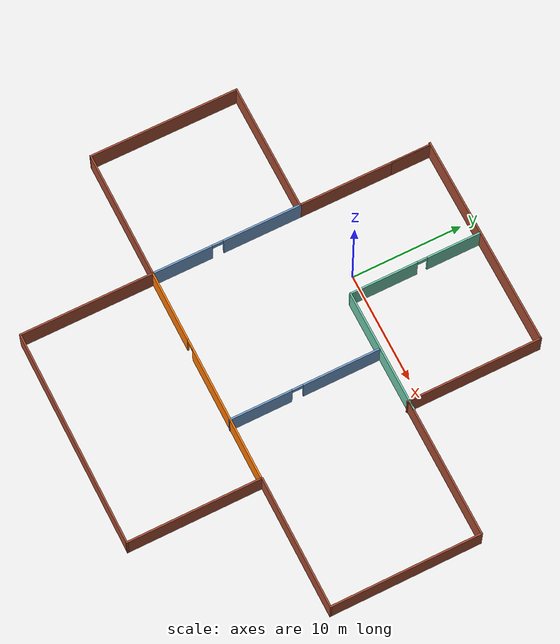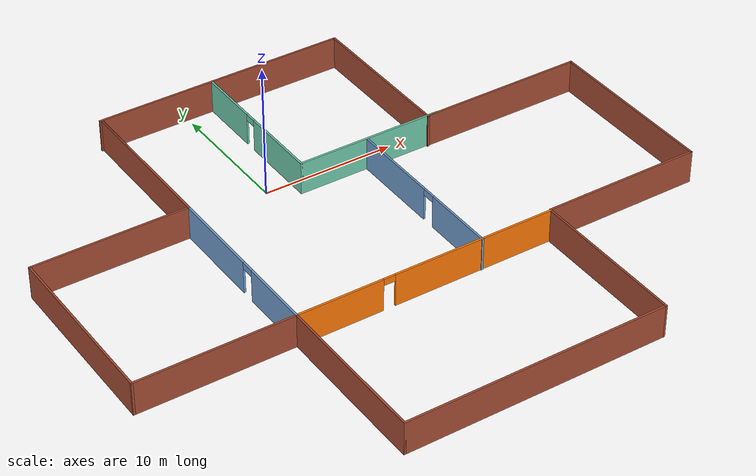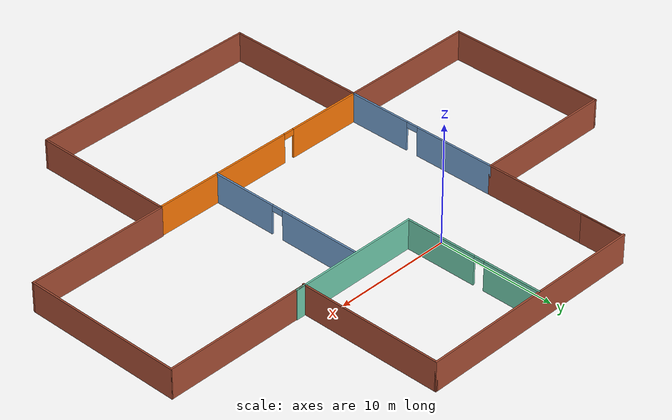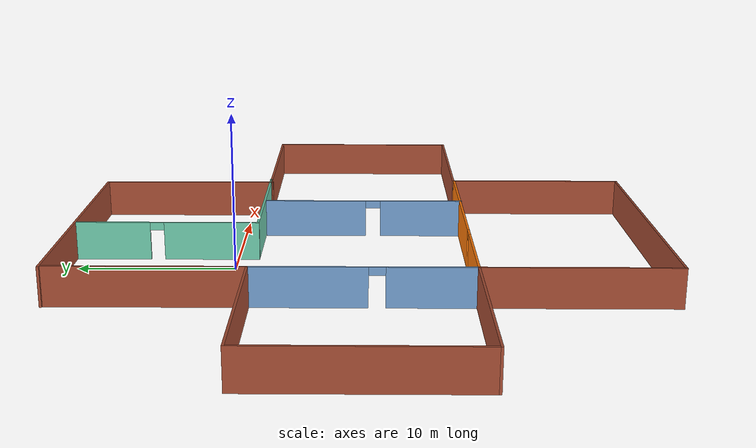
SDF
<?xml version='1.0'?>
<sdf version='1.6'>
  <model name='building2'>
    <pose frame=''>3.23134 -8.00278 0 0 -0 0</pose>
    <link name='Wall_0'>
      <collision name='Wall_0_Collision'>
        <geometry>
          <box>
            <size>19.344 0.15 2.5</size>
          </box>
        </geometry>
        <pose frame=''>0 0 1.25 0 -0 0</pose>
      </collision>
      <visual name='Wall_0_Visual'>
        <pose frame=''>0 0 1.25 0 -0 0</pose>
        <geometry>
          <box>
            <size>19.344 0.15 2.5</size>
          </box>
        </geometry>
        <material>
          <script>
            <uri>file://media/materials/scripts/gazebo.material</uri>
            <name>Gazebo/Bricks</name>
          </script>
          <ambient>1 1 1 1</ambient>
        </material>
        <meta>
          <layer>0</layer>
        </meta>
      </visual>
      <pose frame=''>-0.473335 18.6068 0 0 -0 0</pose>
    </link>
    <link name='Wall_1'>
      <collision name='Wall_1_Collision'>
        <geometry>
          <box>
            <size>12.164 0.15 2.5</size>
          </box>
        </geometry>
        <pose frame=''>0 0 1.25 0 -0 0</pose>
      </collision>
      <visual name='Wall_1_Visual'>
        <pose frame=''>0 0 1.25 0 -0 0</pose>
        <geometry>
          <box>
            <size>12.164 0.15 2.5</size>
          </box>
        </geometry>
        <material>
          <script>
            <uri>file://media/materials/scripts/gazebo.material</uri>
            <name>Gazebo/Bricks</name>
          </script>
          <ambient>1 1 1 1</ambient>
        </material>
        <meta>
          <layer>0</layer>
        </meta>
      </visual>
      <pose frame=''>9.12347 12.5998 0 0 -0 -1.57083</pose>
    </link>
    <link name='Wall_10'>
      <collision name='Wall_10_Collision'>
        <geometry>
          <box>
            <size>11.75 0.15 2.5</size>
          </box>
        </geometry>
        <pose frame=''>0 0 1.25 0 -0 0</pose>
      </collision>
      <visual name='Wall_10_Visual'>
        <pose frame=''>0 0 1.25 0 -0 0</pose>
        <geometry>
          <box>
            <size>11.75 0.15 2.5</size>
          </box>
        </geometry>
        <material>
          <script>
            <uri>file://media/materials/scripts/gazebo.material</uri>
            <name>Gazebo/Bricks</name>
          </script>
          <ambient>1 1 1 1</ambient>
        </material>
        <meta>
          <layer>0</layer>
        </meta>
      </visual>
      <pose frame=''>-15.7507 -6.75678 0 0 -0 3.14159</pose>
    </link>
    <link name='Wall_11'>
      <collision name='Wall_11_Collision'>
        <geometry>
          <box>
            <size>13.5 0.15 2.5</size>
          </box>
        </geometry>
        <pose frame=''>0 0 1.25 0 -0 0</pose>
      </collision>
      <visual name='Wall_11_Visual'>
        <pose frame=''>0 0 1.25 0 -0 0</pose>
        <geometry>
          <box>
            <size>13.5 0.15 2.5</size>
          </box>
        </geometry>
        <material>
          <script>
            <uri>file://media/materials/scripts/gazebo.material</uri>
            <name>Gazebo/Bricks</name>
          </script>
          <ambient>1 1 1 1</ambient>
        </material>
        <meta>
          <layer>0</layer>
        </meta>
      </visual>
      <pose frame=''>-21.5507 -0.081781 0 0 -0 1.5708</pose>
    </link>
    <link name='Wall_12'>
      <collision name='Wall_12_Collision'>
        <geometry>
          <box>
            <size>11.75 0.15 2.5</size>
          </box>
        </geometry>
        <pose frame=''>0 0 1.25 0 -0 0</pose>
      </collision>
      <visual name='Wall_12_Visual'>
        <pose frame=''>0 0 1.25 0 -0 0</pose>
        <geometry>
          <box>
            <size>11.75 0.15 2.5</size>
          </box>
        </geometry>
        <material>
          <script>
            <uri>file://media/materials/scripts/gazebo.material</uri>
            <name>Gazebo/Bricks</name>
          </script>
          <ambient>1 1 1 1</ambient>
        </material>
        <meta>
          <layer>0</layer>
        </meta>
      </visual>
      <pose frame=''>-15.7507 6.59322 0 0 -0 0</pose>
    </link>
    <link name='Wall_13'>
      <collision name='Wall_13_Collision'>
        <geometry>
          <box>
            <size>12 0.15 2.5</size>
          </box>
        </geometry>
        <pose frame=''>0 0 1.25 0 -0 0</pose>
      </collision>
      <visual name='Wall_13_Visual'>
        <pose frame=''>0 0 1.25 0 -0 0</pose>
        <geometry>
          <box>
            <size>12 0.15 2.5</size>
          </box>
        </geometry>
        <material>
          <script>
            <uri>file://media/materials/scripts/gazebo.material</uri>
            <name>Gazebo/Bricks</name>
          </script>
          <ambient>1 1 1 1</ambient>
        </material>
        <meta>
          <layer>0</layer>
        </meta>
      </visual>
      <pose frame=''>-9.95069 12.5182 0 0 -0 1.5708</pose>
    </link>
    <link name='Wall_14'>
      <collision name='Wall_14_Collision'>
        <geometry>
          <box>
            <size>3.55 0.15 2.5</size>
          </box>
        </geometry>
        <pose frame=''>0 0 1.25 0 -0 0</pose>
      </collision>
      <visual name='Wall_14_Visual'>
        <pose frame=''>0 0 1.25 0 -0 0</pose>
        <geometry>
          <box>
            <size>3.55 0.15 2.5</size>
          </box>
        </geometry>
        <material>
          <script>
            <uri>file://media/materials/scripts/gazebo.material</uri>
            <name>Gazebo/Bricks</name>
          </script>
          <ambient>1 1 1 1</ambient>
        </material>
        <meta>
          <layer>0</layer>
        </meta>
      </visual>
      <pose frame=''>-9.95069 16.7432 0 0 -0 -1.5708</pose>
    </link>
    <link name='Wall_18'>
      <collision name='Wall_18_Collision'>
        <geometry>
          <box>
            <size>12 0.15 2.5</size>
          </box>
        </geometry>
        <pose frame=''>0 0 1.25 0 -0 0</pose>
      </collision>
      <visual name='Wall_18_Visual'>
        <pose frame=''>0 0 1.25 0 -0 0</pose>
        <geometry>
          <box>
            <size>12 0.15 2.5</size>
          </box>
        </geometry>
        <material>
          <script>
            <uri>file://media/materials/scripts/gazebo.material</uri>
            <name>Gazebo/Bricks</name>
          </script>
          <ambient>1 1 1 1</ambient>
        </material>
        <meta>
          <layer>0</layer>
        </meta>
      </visual>
      <pose frame=''>-9.95069 -12.6818 0 0 -0 -1.5708</pose>
    </link>
    <link name='Wall_2'>
      <collision name='Wall_2_Collision'>
        <geometry>
          <box>
            <size>12.5773 0.15 2.5</size>
          </box>
        </geometry>
        <pose frame=''>0 0 1.25 0 -0 0</pose>
      </collision>
      <visual name='Wall_2_Visual'>
        <pose frame=''>0 0 1.25 0 -0 0</pose>
        <geometry>
          <box>
            <size>12.5773 0.15 2.5</size>
          </box>
        </geometry>
        <material>
          <script>
            <uri>file://media/materials/scripts/gazebo.material</uri>
            <name>Gazebo/Bricks</name>
          </script>
          <ambient>1 1 1 1</ambient>
        </material>
        <meta>
          <layer>0</layer>
        </meta>
      </visual>
      <pose frame=''>15.3369 6.66751 0 0 -0 -0.001151</pose>
    </link>
    <link name='Wall_20'>
      <collision name='Wall_20_Collision'>
        <geometry>
          <box>
            <size>19.75 0.15 2.5</size>
          </box>
        </geometry>
        <pose frame=''>0 0 1.25 0 -0 0</pose>
      </collision>
      <visual name='Wall_20_Visual'>
        <pose frame=''>0 0 1.25 0 -0 0</pose>
        <geometry>
          <box>
            <size>19.75 0.15 2.5</size>
          </box>
        </geometry>
        <material>
          <script>
            <uri>file://media/materials/scripts/gazebo.material</uri>
            <name>Gazebo/Bricks</name>
          </script>
          <ambient>1 1 1 1</ambient>
        </material>
        <meta>
          <layer>0</layer>
        </meta>
      </visual>
      <pose frame=''>-0.150688 -18.6068 0 0 -0 0</pose>
    </link>
    <link name='Wall_22'>
      <pose frame=''>-9.95069 -0.081781 0 0 -0 -1.5708</pose>
      <visual name='Wall_22_Visual_0'>
        <pose frame=''>-3.21252 0 1.25 0 -0 0</pose>
        <geometry>
          <box>
            <size>7.07496 0.15 2.5</size>
          </box>
        </geometry>
        <material>
          <script>
            <uri>file://media/materials/scripts/gazebo.material</uri>
            <name>Gazebo/Grey</name>
          </script>
          <ambient>0.447059 0.623529 0.811765 1</ambient>
        </material>
        <meta>
          <layer>0</layer>
        </meta>
      </visual>
      <collision name='Wall_22_Collision_0'>
        <geometry>
          <box>
            <size>7.07496 0.15 2.5</size>
          </box>
        </geometry>
        <pose frame=''>-3.21252 0 1.25 0 -0 0</pose>
      </collision>
      <visual name='Wall_22_Visual_1'>
        <pose frame=''>4.03748 0 1.25 0 -0 0</pose>
        <geometry>
          <box>
            <size>5.42504 0.15 2.5</size>
          </box>
        </geometry>
        <material>
          <script>
            <uri>file://media/materials/scripts/gazebo.material</uri>
            <name>Gazebo/Grey</name>
          </script>
          <ambient>0.447059 0.623529 0.811765 1</ambient>
        </material>
        <meta>
          <layer>0</layer>
        </meta>
      </visual>
      <collision name='Wall_22_Collision_1'>
        <geometry>
          <box>
            <size>5.42504 0.15 2.5</size>
          </box>
        </geometry>
        <pose frame=''>4.03748 0 1.25 0 -0 0</pose>
      </collision>
      <visual name='Wall_22_Visual_2'>
        <pose frame=''>0.824956 0 2.25 0 -0 0</pose>
        <geometry>
          <box>
            <size>1 0.15 0.5</size>
          </box>
        </geometry>
        <material>
          <script>
            <uri>file://media/materials/scripts/gazebo.material</uri>
            <name>Gazebo/Grey</name>
          </script>
          <ambient>0.447059 0.623529 0.811765 1</ambient>
        </material>
        <meta>
          <layer>0</layer>
        </meta>
      </visual>
      <collision name='Wall_22_Collision_2'>
        <geometry>
          <box>
            <size>1 0.15 0.5</size>
          </box>
        </geometry>
        <pose frame=''>0.824956 0 2.25 0 -0 0</pose>
      </collision>
    </link>
    <link name='Wall_23'>
      <pose frame=''>-0.150688 -6.75678 0 0 -0 0</pose>
      <visual name='Wall_23_Visual_0'>
        <pose frame=''>-6.62822 0 1.25 0 -0 0</pose>
        <geometry>
          <box>
            <size>6.49356 0.15 2.5</size>
          </box>
        </geometry>
        <material>
          <script>
            <uri>file://media/materials/scripts/gazebo.material</uri>
            <name>Gazebo/Grey</name>
          </script>
          <ambient>0.996078 0.47451 0.0196078 1</ambient>
        </material>
        <meta>
          <layer>0</layer>
        </meta>
      </visual>
      <collision name='Wall_23_Collision_0'>
        <geometry>
          <box>
            <size>6.49356 0.15 2.5</size>
          </box>
        </geometry>
        <pose frame=''>-6.62822 0 1.25 0 -0 0</pose>
      </collision>
      <visual name='Wall_23_Visual_1'>
        <pose frame=''>3.69678 0 1.25 0 -0 0</pose>
        <geometry>
          <box>
            <size>12.3564 0.15 2.5</size>
          </box>
        </geometry>
        <material>
          <script>
            <uri>file://media/materials/scripts/gazebo.material</uri>
            <name>Gazebo/Grey</name>
          </script>
          <ambient>0.996078 0.47451 0.0196078 1</ambient>
        </material>
        <meta>
          <layer>0</layer>
        </meta>
      </visual>
      <collision name='Wall_23_Collision_1'>
        <geometry>
          <box>
            <size>12.3564 0.15 2.5</size>
          </box>
        </geometry>
        <pose frame=''>3.69678 0 1.25 0 -0 0</pose>
      </collision>
      <visual name='Wall_23_Visual_2'>
        <pose frame=''>-2.93144 0 2.25 0 -0 0</pose>
        <geometry>
          <box>
            <size>0.9 0.15 0.5</size>
          </box>
        </geometry>
        <material>
          <script>
            <uri>file://media/materials/scripts/gazebo.material</uri>
            <name>Gazebo/Grey</name>
          </script>
          <ambient>0.996078 0.47451 0.0196078 1</ambient>
        </material>
        <meta>
          <layer>0</layer>
        </meta>
      </visual>
      <collision name='Wall_23_Collision_2'>
        <geometry>
          <box>
            <size>0.9 0.15 0.5</size>
          </box>
        </geometry>
        <pose frame=''>-2.93144 0 2.25 0 -0 0</pose>
      </collision>
    </link>
    <link name='Wall_28'>
      <pose frame=''>-1.18543 12.6467 0 0 -0 -1.5708</pose>
      <visual name='Wall_28_Visual_0'>
        <pose frame=''>-3.53301 0 1.25 0 -0 0</pose>
        <geometry>
          <box>
            <size>4.93397 0.15 2.5</size>
          </box>
        </geometry>
        <material>
          <script>
            <uri>file://media/materials/scripts/gazebo.material</uri>
            <name>Gazebo/Grey</name>
          </script>
          <ambient>0.435294 0.796078 0.67451 1</ambient>
        </material>
        <meta>
          <layer>0</layer>
        </meta>
      </visual>
      <collision name='Wall_28_Collision_0'>
        <geometry>
          <box>
            <size>4.93397 0.15 2.5</size>
          </box>
        </geometry>
        <pose frame=''>-3.53301 0 1.25 0 -0 0</pose>
      </collision>
      <visual name='Wall_28_Visual_1'>
        <pose frame=''>2.91699 0 1.25 0 -0 0</pose>
        <geometry>
          <box>
            <size>6.16603 0.15 2.5</size>
          </box>
        </geometry>
        <material>
          <script>
            <uri>file://media/materials/scripts/gazebo.material</uri>
            <name>Gazebo/Grey</name>
          </script>
          <ambient>0.435294 0.796078 0.67451 1</ambient>
        </material>
        <meta>
          <layer>0</layer>
        </meta>
      </visual>
      <collision name='Wall_28_Collision_1'>
        <geometry>
          <box>
            <size>6.16603 0.15 2.5</size>
          </box>
        </geometry>
        <pose frame=''>2.91699 0 1.25 0 -0 0</pose>
      </collision>
      <visual name='Wall_28_Visual_2'>
        <pose frame=''>-0.616027 0 2.25 0 -0 0</pose>
        <geometry>
          <box>
            <size>0.9 0.15 0.5</size>
          </box>
        </geometry>
        <material>
          <script>
            <uri>file://media/materials/scripts/gazebo.material</uri>
            <name>Gazebo/Grey</name>
          </script>
          <ambient>0.435294 0.796078 0.67451 1</ambient>
        </material>
        <meta>
          <layer>0</layer>
        </meta>
      </visual>
      <collision name='Wall_28_Collision_2'>
        <geometry>
          <box>
            <size>0.9 0.15 0.5</size>
          </box>
        </geometry>
        <pose frame=''>-0.616027 0 2.25 0 -0 0</pose>
      </collision>
    </link>
    <link name='Wall_29'>
      <collision name='Wall_29_Collision'>
        <geometry>
          <box>
            <size>11.25 0.15 2.5</size>
          </box>
        </geometry>
        <pose frame=''>0 0 1.25 0 -0 0</pose>
      </collision>
      <visual name='Wall_29_Visual'>
        <pose frame=''>0 0 1.25 0 -0 0</pose>
        <geometry>
          <box>
            <size>11.25 0.15 2.5</size>
          </box>
        </geometry>
        <material>
          <script>
            <uri>file://media/materials/scripts/gazebo.material</uri>
            <name>Gazebo/Grey</name>
          </script>
          <ambient>0.435294 0.796078 0.67451 1</ambient>
        </material>
        <meta>
          <layer>0</layer>
        </meta>
      </visual>
      <pose frame=''>4.36457 6.7217 0 0 -0 0</pose>
    </link>
    <link name='Wall_3'>
      <collision name='Wall_3_Collision'>
        <geometry>
          <box>
            <size>13.5 0.15 2.5</size>
          </box>
        </geometry>
        <pose frame=''>0 0 1.25 0 -0 0</pose>
      </collision>
      <visual name='Wall_3_Visual'>
        <pose frame=''>0 0 1.25 0 -0 0</pose>
        <geometry>
          <box>
            <size>13.5 0.15 2.5</size>
          </box>
        </geometry>
        <material>
          <script>
            <uri>file://media/materials/scripts/gazebo.material</uri>
            <name>Gazebo/Bricks</name>
          </script>
          <ambient>1 1 1 1</ambient>
        </material>
        <meta>
          <layer>0</layer>
        </meta>
      </visual>
      <pose frame=''>21.5506 -0.014642 0 0 -0 -1.5708</pose>
    </link>
    <link name='Wall_31'>
      <pose frame=''>4.11022 -0.125876 0 0 -0 -1.5708</pose>
      <visual name='Wall_31_Visual_0'>
        <pose frame=''>-3.30613 0 1.25 0 -0 0</pose>
        <geometry>
          <box>
            <size>6.88774 0.15 2.5</size>
          </box>
        </geometry>
        <material>
          <script>
            <uri>file://media/materials/scripts/gazebo.material</uri>
            <name>Gazebo/Grey</name>
          </script>
          <ambient>0.447059 0.623529 0.811765 1</ambient>
        </material>
        <meta>
          <layer>0</layer>
        </meta>
      </visual>
      <collision name='Wall_31_Collision_0'>
        <geometry>
          <box>
            <size>6.88774 0.15 2.5</size>
          </box>
        </geometry>
        <pose frame=''>-3.30613 0 1.25 0 -0 0</pose>
      </collision>
      <visual name='Wall_31_Visual_1'>
        <pose frame=''>3.94387 0 1.25 0 -0 0</pose>
        <geometry>
          <box>
            <size>5.61226 0.15 2.5</size>
          </box>
        </geometry>
        <material>
          <script>
            <uri>file://media/materials/scripts/gazebo.material</uri>
            <name>Gazebo/Grey</name>
          </script>
          <ambient>0.447059 0.623529 0.811765 1</ambient>
        </material>
        <meta>
          <layer>0</layer>
        </meta>
      </visual>
      <collision name='Wall_31_Collision_1'>
        <geometry>
          <box>
            <size>5.61226 0.15 2.5</size>
          </box>
        </geometry>
        <pose frame=''>3.94387 0 1.25 0 -0 0</pose>
      </collision>
      <visual name='Wall_31_Visual_2'>
        <pose frame=''>0.637735 0 2.25 0 -0 0</pose>
        <geometry>
          <box>
            <size>1 0.15 0.5</size>
          </box>
        </geometry>
        <material>
          <script>
            <uri>file://media/materials/scripts/gazebo.material</uri>
            <name>Gazebo/Grey</name>
          </script>
          <ambient>0.447059 0.623529 0.811765 1</ambient>
        </material>
        <meta>
          <layer>0</layer>
        </meta>
      </visual>
      <collision name='Wall_31_Collision_2'>
        <geometry>
          <box>
            <size>1 0.15 0.5</size>
          </box>
        </geometry>
        <pose frame=''>0.637735 0 2.25 0 -0 0</pose>
      </collision>
    </link>
    <link name='Wall_4'>
      <collision name='Wall_4_Collision'>
        <geometry>
          <box>
            <size>12 0.15 2.5</size>
          </box>
        </geometry>
        <pose frame=''>0 0 1.25 0 -0 0</pose>
      </collision>
      <visual name='Wall_4_Visual'>
        <pose frame=''>0 0 1.25 0 -0 0</pose>
        <geometry>
          <box>
            <size>12 0.15 2.5</size>
          </box>
        </geometry>
        <material>
          <script>
            <uri>file://media/materials/scripts/gazebo.material</uri>
            <name>Gazebo/Bricks</name>
          </script>
          <ambient>1 1 1 1</ambient>
        </material>
        <meta>
          <layer>0</layer>
        </meta>
      </visual>
      <pose frame=''>15.6256 -6.68964 0 0 -0 3.14159</pose>
    </link>
    <link name='Wall_6'>
      <collision name='Wall_6_Collision'>
        <geometry>
          <box>
            <size>0.16 0.15 2.5</size>
          </box>
        </geometry>
        <pose frame=''>0 0 1.25 0 -0 0</pose>
      </collision>
      <visual name='Wall_6_Visual'>
        <pose frame=''>0 0 1.25 0 -0 0</pose>
        <geometry>
          <box>
            <size>0.16 0.15 2.5</size>
          </box>
        </geometry>
        <material>
          <script>
            <uri>file://media/materials/scripts/gazebo.material</uri>
            <name>Gazebo/Grey</name>
          </script>
          <ambient>1 1 1 1</ambient>
        </material>
        <meta>
          <layer>0</layer>
        </meta>
      </visual>
      <pose frame=''>9.64431 -6.75678 0 0 -0 0</pose>
    </link>
    <link name='Wall_7'>
      <collision name='Wall_7_Collision'>
        <geometry>
          <box>
            <size>12 0.15 2.5</size>
          </box>
        </geometry>
        <pose frame=''>0 0 1.25 0 -0 0</pose>
      </collision>
      <visual name='Wall_7_Visual'>
        <pose frame=''>0 0 1.25 0 -0 0</pose>
        <geometry>
          <box>
            <size>12 0.15 2.5</size>
          </box>
        </geometry>
        <material>
          <script>
            <uri>file://media/materials/scripts/gazebo.material</uri>
            <name>Gazebo/Bricks</name>
          </script>
          <ambient>1 1 1 1</ambient>
        </material>
        <meta>
          <layer>0</layer>
        </meta>
      </visual>
      <pose frame=''>9.64931 -12.6818 0 0 -0 -1.5708</pose>
    </link>
    <static>1</static>
  </model>
</sdf>
